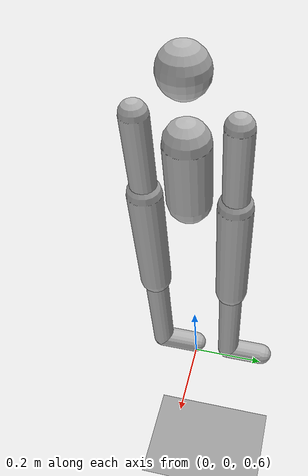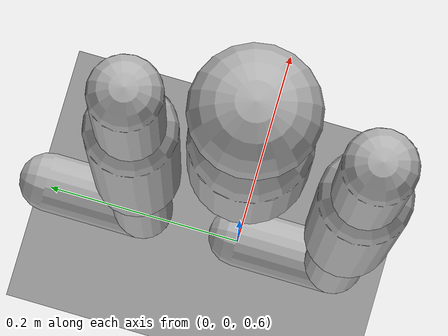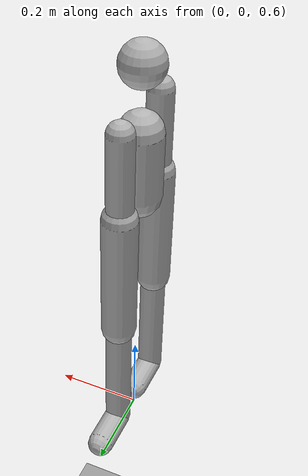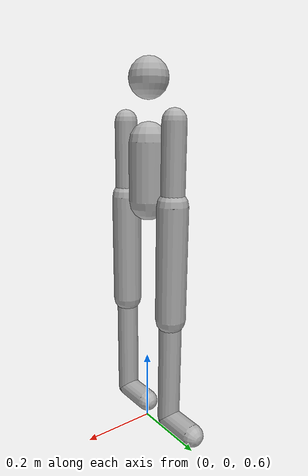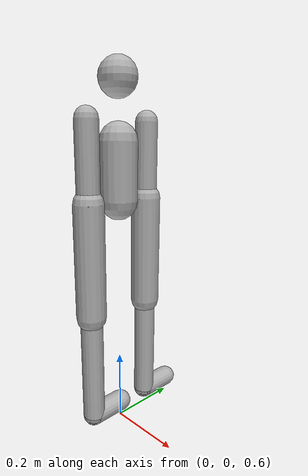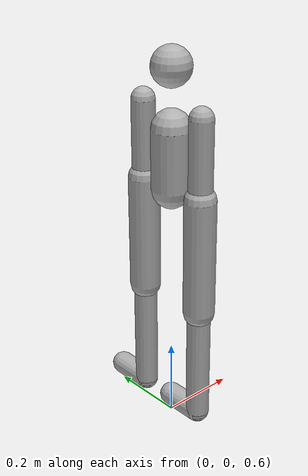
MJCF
<?xml version="1.0" ?>
<mujoco>
    <compiler angle="radian" coordinate="local" inertiafromgeom="true"/>
    <default>
        <joint armature="0.1" damping="0.5" limited="true"/>
        <geom condim="1" contype="1" conaffinity="1" rgba="0.7 0.7 0.7 1"/>
        <motor ctrlrange="-1 1" ctrllimited="true" gear="100"/>
    </default>

    <option timestep="0.005" gravity="0 0 -9.81" integrator="RK4"/>

    <worldbody>
        <light diffuse=".5 .5 .5" pos="0 0 3" dir="0 0 -1"/>
        <camera name="track" pos="0 -3 0.3" mode="trackcom"/>
        <geom name="floor" type="plane" size="1 1 40" rgba=".6 .6 .6 1"/>

        <!-- 躯干 -->
        <body name="torso" pos="0 0 1.25">
            <joint name="root" type="free" limited="false"/>
            <geom name="torso" type="capsule" fromto="0 0 0 0 0 0.15" size="0.05" mass="10"/>

            <!-- 头部 -->
            <body name="head" pos="0 0 0.3">
                <joint name="neck" type="ball" pos="0 0 0" limited="true" range="0 0.5"/>
                <geom name="head" type="sphere" size="0.05" mass="5"/>
            </body>

            <!-- 左臂 -->
            <body name="left_arm" pos="0 0.1 0.2">
                <joint name="left_shoulder" type="ball" pos="0 0 0" limited="true" range="0 0.8"/>
                <geom name="left_upper_arm" type="capsule" fromto="0 0 0 0 0 -0.2" size="0.03" mass="3"/>
                <body name="left_forearm" pos="0 0 -0.2">
                    <joint name="left_elbow" type="hinge" axis="0 1 0" limited="true" range="-1.57 0"/>
                    <geom name="left_lower_arm" type="capsule" fromto="0 0 0 0 0 -0.2" size="0.02" mass="2"/>
                </body>
            </body>

            <!-- 右臂 -->
            <body name="right_arm" pos="0 -0.1 0.2">
                <joint name="right_shoulder" type="ball" pos="0 0 0" limited="true" range="0 0.8"/>
                <geom name="right_upper_arm" type="capsule" fromto="0 0 0 0 0 -0.2" size="0.03" mass="3"/>
                <body name="right_forearm" pos="0 0 -0.2">
                    <joint name="right_elbow" type="hinge" axis="0 1 0" limited="true" range="-1.57 0"/>
                    <geom name="right_lower_arm" type="capsule" fromto="0 0 0 0 0 -0.2" size="0.02" mass="2"/>
                </body>
            </body>

            <!-- 左腿 -->
            <body name="left_thigh" pos="0 0.1 0">
                <joint name="left_hip" type="ball" pos="0 0 0" limited="true" range="0 0.8"/>
                <geom name="left_thigh" type="capsule" fromto="0 0 0 0 0 -0.3" size="0.04" mass="8"/>
                <body name="left_shin" pos="0 0 -0.3">
                    <joint name="left_knee" type="hinge" axis="0 1 0" limited="true" range="-1.57 0"/>
                    <geom name="left_shin" type="capsule" fromto="0 0 0 0 0 -0.3" size="0.03" mass="6"/>
                    <body name="left_foot" pos="0 0 -0.3">
                        <joint name="left_ankle" type="ball" pos="0 0 0" limited="true" range="0 0.5"/>
                        <geom name="left_foot" type="capsule" fromto="0 0 0 0 0.1 0" size="0.03" mass="4"/>
                    </body>
                </body>
            </body>

            <!-- 右腿 -->
            <body name="right_thigh" pos="0 -0.1 0">
                <joint name="right_hip" type="ball" pos="0 0 0" limited="true" range="0 0.8"/>
                <geom name="right_thigh" type="capsule" fromto="0 0 0 0 0 -0.3" size="0.04" mass="8"/>
                <body name="right_shin" pos="0 0 -0.3">
                    <joint name="right_knee" type="hinge" axis="0 1 0" limited="true" range="-1.57 0"/>
                    <geom name="right_shin" type="capsule" fromto="0 0 0 0 0 -0.3" size="0.03" mass="6"/>
                    <body name="right_foot" pos="0 0 -0.3">
                        <joint name="right_ankle" type="ball" pos="0 0 0" limited="true" range="0 0.5"/>
                        <geom name="right_foot" type="capsule" fromto="0 0 0 0 0.1 0" size="0.03" mass="4"/>
                    </body>
                </body>
            </body>
        </body>
    </worldbody>

    <actuator>
        <!-- 头部控制 -->
        <motor joint="neck" gear="100"/>

        <!-- 左臂控制 -->
        <motor joint="left_shoulder" gear="100"/>
        <motor joint="left_elbow" gear="100"/>

        <!-- 右臂控制 -->
        <motor joint="right_shoulder" gear="100"/>
        <motor joint="right_elbow" gear="100"/>

        <!-- 左腿控制 -->
        <motor joint="left_hip" gear="100"/>
        <motor joint="left_knee" gear="100"/>
        <motor joint="left_ankle" gear="100"/>

        <!-- 右腿控制 -->
        <motor joint="right_hip" gear="100"/>
        <motor joint="right_knee" gear="100"/>
        <motor joint="right_ankle" gear="100"/>
    </actuator>
</mujoco>
